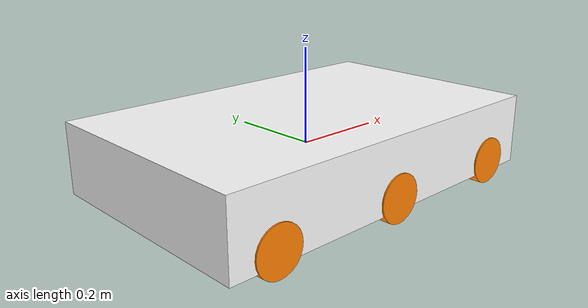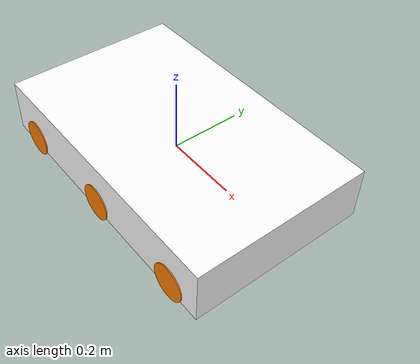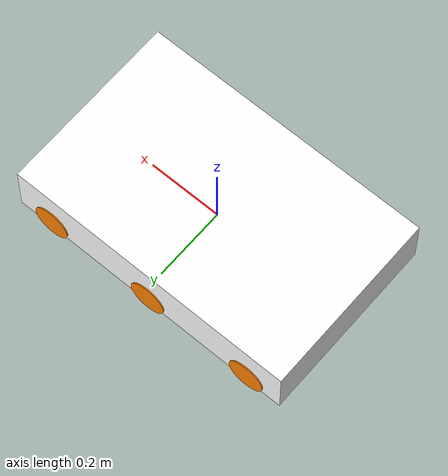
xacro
<?xml version="1.0"?>
<robot xmlns:xacro="http://www.ros.org/wiki/xacro">

    <!-- Including files -->

    <!-- Inertial -->
    <xacro:include filename="macro/inertial.xacro" />

    <!-- Wheel -->
    <xacro:include filename="macro/wheel.xacro" />

    <!-- Define robot constants -->

    <!-- Robot base constants -->
    <xacro:property name="base_width" value="0.5" />
    <xacro:property name="base_length" value="0.8" />
    <xacro:property name="base_height" value="0.15" />

    <!-- Robot wheels constants -->
    <xacro:property name="wheel_radius" value="0.05" />
    <xacro:property name="wheel_width" value="0.04" />
    <xacro:property name="wheel_ygap" value="-0.005" />
    <xacro:property name="wheel_zoff" value="0.05" />
    <xacro:property name="wheel_xoff" value="0.00" />

    <!-- Castor wheels constats -->
    <xacro:property name="caster_xoff" value="0.14" />

    <!-- Robot Base -->
    <link name="base_link">
        <visual>
            <geometry>
                <box size="${base_length} ${base_width} ${base_height}" />
            </geometry>
            <material name="white">
                <color rgba="1.0 1.0 1.0 1.0" />
            </material>
        </visual>

        <collision>
            <geometry>
                <box size="${base_length} ${base_width} ${base_height}" />
            </geometry>
        </collision>

        <xacro:box_inertia mass="15" width="${base_width}" length="${base_length}"
            height="${base_height}" />
    </link>

    <gazebo reference="base_link">
        <material>Gazebo/White</material>
    </gazebo>

    <!-- Robot Footprint -->
    <link name="base_footprint" />

    <joint name="base_joint" type="fixed">
        <parent link="base_link" />
        <child link="base_footprint" />
        <origin xyz="0.0 0.0 ${-(wheel_radius+wheel_zoff)}" rpy="0 0 0" />
    </joint>

    <!-- Wheels -->
    <xacro:wheel prefix="left_wheel_1" x="0.3" y="0.233" x_reflect="-1" y_reflect="1" />
    <xacro:wheel prefix="right_wheel_1" x="0.3" y="0.233" x_reflect="-1" y_reflect="-1" />

    <xacro:wheel prefix="left_wheel_2" x="0" y="0.233" x_reflect="-1" y_reflect="1" />
    <xacro:wheel prefix="right_wheel_2" x="0" y="0.233" x_reflect="-1" y_reflect="-1" />

    <xacro:wheel prefix="left_wheel_3" x="-0.3" y="0.233" x_reflect="-1" y_reflect="1" />
    <xacro:wheel prefix="right_wheel_3" x="-0.3" y="0.233" x_reflect="-1" y_reflect="-1" />

</robot>

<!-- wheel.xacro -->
<robot xmlns:xacro="http://www.ros.org/wiki/xacro">

    <!-- Include inertial macros -->
    <xacro:include filename="inertial.xacro" />

    <!-- Wheels Macro -->
    <xacro:macro name="wheel" params="prefix x y x_reflect y_reflect">

        <link name="${prefix}_link">
            <visual>
                <origin xyz="0 0 0" rpy="${pi/2} 0 0" />
                <geometry>
                    <cylinder radius="${wheel_radius}" length="${wheel_width}" />
                </geometry>
                <material name="orange">
                    <color rgba="1.0 0.5 0.0 1.0" />
                </material>
            </visual>

            <collision>
                <origin xyz="0 0 0" rpy="${pi/2} 0 0" />
                <geometry>
                    <cylinder radius="${wheel_radius}" length="${wheel_width}" />
                </geometry>
            </collision>

            <xacro:cyclinder_inertia mass="0.5" radius="${wheel_radius}" height="${wheel_width}" />
        </link>

        <joint name="${prefix}_joint" type="continuous">
            <parent link="base_link" />
            <child link="${prefix}_link" />
            <origin
                xyz="${x * x_reflect} ${y * y_reflect} ${-wheel_zoff}"
                rpy="0 0 0" />
            <axis xyz="0 1 0" />
        </joint>

        <gazebo reference="${prefix}_link">
            <material>Gazebo/Orange</material>
            <mu1>1.0</mu1>
            <mu2>1.0</mu2>
            <kp>1000000.0</kp>
            <kd>100.0</kd>
            <minDepth>0.001</minDepth>
            <maxVel>1.0</maxVel>
        </gazebo>

    </xacro:macro>

</robot>
